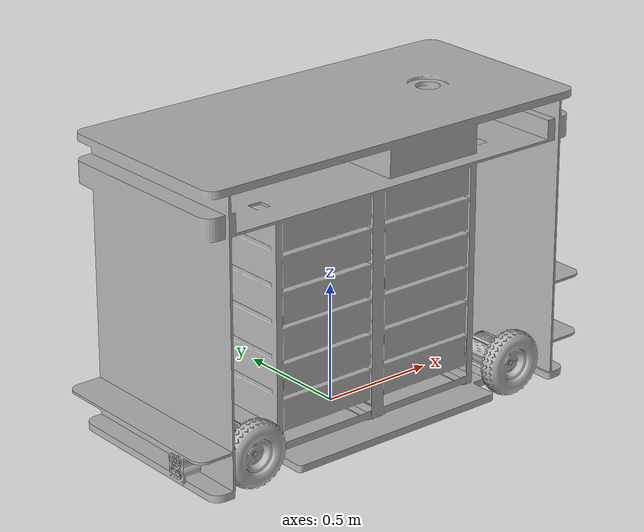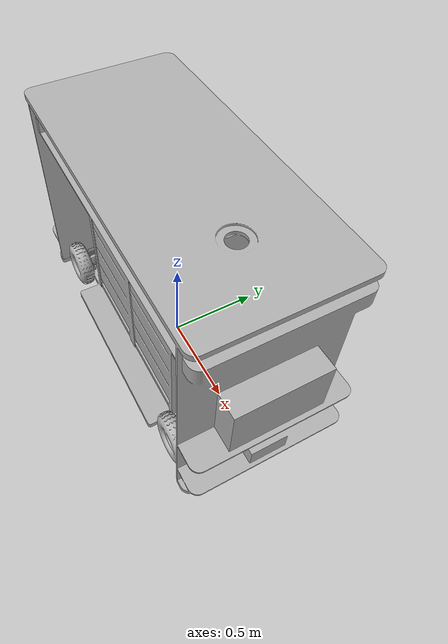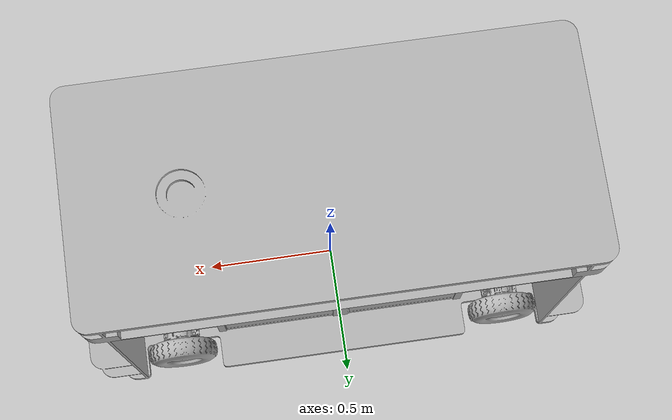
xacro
<?xml version="1.0" ?>
<robot name="than_xe_backup" xmlns:xacro="http://www.ros.org/wiki/xacro">

<xacro:include filename="$(find than_xe_backup_description)/urdf/materials.xacro" />
<xacro:include filename="$(find than_xe_backup_description)/urdf/than_xe_backup.trans" />
<xacro:include filename="$(find than_xe_backup_description)/urdf/than_xe_backup.gazebo" />
<link name="base_link">
  <inertial>
    <origin xyz="0.0370064191341632 -0.0012085384767595287 0.6336765540680926" rpy="0 0 0"/>
    <mass value="4808.877187166819"/>
    <inertia ixx="802.406036" iyy="1467.787259" izz="994.196717" ixy="4.876369" iyz="-2.186078" ixz="-5.572851"/>
  </inertial>
  <visual>
    <origin xyz="0 0 0" rpy="0 0 0"/>
    <geometry>
      <mesh filename="file://$(find than_xe_backup_description)/meshes/base_link.stl" scale="0.001 0.001 0.001"/>
    </geometry>
    <material name="silver"/>
  </visual>
  <collision>
    <origin xyz="0 0 0" rpy="0 0 0"/>
    <geometry>
      <mesh filename="file://$(find than_xe_backup_description)/meshes/base_link.stl" scale="0.001 0.001 0.001"/>
    </geometry>
  </collision>
</link>

<link name="wheel1_1">
  <inertial>
    <origin xyz="6.062106372439757e-11 0.00043646564249066877 -3.530163661391583e-11" rpy="0 0 0"/>
    <mass value="7.035084944105409"/>
    <inertia ixx="0.045298" iyy="0.079257" izz="0.045298" ixy="0.0" iyz="0.0" ixz="0.0"/>
  </inertial>
  <visual>
    <origin xyz="-0.65 -0.35225 -0.1015" rpy="0 0 0"/>
    <geometry>
      <mesh filename="file://$(find than_xe_backup_description)/meshes/wheel1_1.stl" scale="0.001 0.001 0.001"/>
    </geometry>
    <material name="silver"/>
  </visual>
  <collision>
    <origin xyz="-0.65 -0.35225 -0.1015" rpy="0 0 0"/>
    <geometry>
      <mesh filename="file://$(find than_xe_backup_description)/meshes/wheel1_1.stl" scale="0.001 0.001 0.001"/>
    </geometry>
  </collision>
</link>

<link name="wheel2_1">
  <inertial>
    <origin xyz="6.069045266343664e-11 -0.0004364656424908908 3.517806879127505e-11" rpy="0 0 0"/>
    <mass value="7.035084944105409"/>
    <inertia ixx="0.045298" iyy="0.079257" izz="0.045298" ixy="-0.0" iyz="0.0" ixz="-0.0"/>
  </inertial>
  <visual>
    <origin xyz="-0.64925 0.35225 -0.0982" rpy="0 0 0"/>
    <geometry>
      <mesh filename="file://$(find than_xe_backup_description)/meshes/wheel2_1.stl" scale="0.001 0.001 0.001"/>
    </geometry>
    <material name="silver"/>
  </visual>
  <collision>
    <origin xyz="-0.64925 0.35225 -0.0982" rpy="0 0 0"/>
    <geometry>
      <mesh filename="file://$(find than_xe_backup_description)/meshes/wheel2_1.stl" scale="0.001 0.001 0.001"/>
    </geometry>
  </collision>
</link>

<link name="wheel4_1">
  <inertial>
    <origin xyz="-4.4986378688882667e-07 0.0004364656424904467 2.8897391064763855e-07" rpy="0 0 0"/>
    <mass value="7.035084944105409"/>
    <inertia ixx="0.045298" iyy="0.079257" izz="0.045298" ixy="-0.0" iyz="-0.0" ixz="0.0"/>
  </inertial>
  <visual>
    <origin xyz="0.653595 -0.35225 -0.098109" rpy="0 0 0"/>
    <geometry>
      <mesh filename="file://$(find than_xe_backup_description)/meshes/wheel4_1.stl" scale="0.001 0.001 0.001"/>
    </geometry>
    <material name="silver"/>
  </visual>
  <collision>
    <origin xyz="0.653595 -0.35225 -0.098109" rpy="0 0 0"/>
    <geometry>
      <mesh filename="file://$(find than_xe_backup_description)/meshes/wheel4_1.stl" scale="0.001 0.001 0.001"/>
    </geometry>
  </collision>
</link>

<link name="wheel3_1">
  <inertial>
    <origin xyz="4.4810785126969677e-07 -0.00043646564249105735 6.14744366522757e-13" rpy="0 0 0"/>
    <mass value="7.035084944105409"/>
    <inertia ixx="0.045298" iyy="0.079257" izz="0.045298" ixy="0.0" iyz="-0.0" ixz="-0.0"/>
  </inertial>
  <visual>
    <origin xyz="0.652962 0.341 -0.102" rpy="0 0 0"/>
    <geometry>
      <mesh filename="file://$(find than_xe_backup_description)/meshes/wheel3_1.stl" scale="0.001 0.001 0.001"/>
    </geometry>
    <material name="silver"/>
  </visual>
  <collision>
    <origin xyz="0.652962 0.341 -0.102" rpy="0 0 0"/>
    <geometry>
      <mesh filename="file://$(find than_xe_backup_description)/meshes/wheel3_1.stl" scale="0.001 0.001 0.001"/>
    </geometry>
  </collision>
</link>

<link name="motor1_1">
  <inertial>
    <origin xyz="-0.65 -0.295 -0.03" rpy="0 0 0"/>
    <mass value="0.0"/>
    <inertia ixx="0.0" iyy="0.0" izz="0.0" ixy="0.0" iyz="0.0" ixz="0.0"/>
  </inertial>
  <visual>
    <origin xyz="-0.65 -0.295 -0.03" rpy="0 0 0"/>
    <geometry>
      <mesh filename="file://$(find than_xe_backup_description)/meshes/motor1_1.stl" scale="0.001 0.001 0.001"/>
    </geometry>
    <material name="silver"/>
  </visual>
  <collision>
    <origin xyz="-0.65 -0.295 -0.03" rpy="0 0 0"/>
    <geometry>
      <mesh filename="file://$(find than_xe_backup_description)/meshes/motor1_1.stl" scale="0.001 0.001 0.001"/>
    </geometry>
  </collision>
</link>

<link name="motor2_1">
  <inertial>
    <origin xyz="-0.65 0.295 -0.03" rpy="0 0 0"/>
    <mass value="0.0"/>
    <inertia ixx="0.0" iyy="0.0" izz="0.0" ixy="0.0" iyz="0.0" ixz="0.0"/>
  </inertial>
  <visual>
    <origin xyz="-0.65 0.295 -0.03" rpy="0 0 0"/>
    <geometry>
      <mesh filename="file://$(find than_xe_backup_description)/meshes/motor2_1.stl" scale="0.001 0.001 0.001"/>
    </geometry>
    <material name="silver"/>
  </visual>
  <collision>
    <origin xyz="-0.65 0.295 -0.03" rpy="0 0 0"/>
    <geometry>
      <mesh filename="file://$(find than_xe_backup_description)/meshes/motor2_1.stl" scale="0.001 0.001 0.001"/>
    </geometry>
  </collision>
</link>

<link name="motor3_1">
  <inertial>
    <origin xyz="0.65 -0.295 -0.03" rpy="0 0 0"/>
    <mass value="0.0"/>
    <inertia ixx="0.0" iyy="0.0" izz="0.0" ixy="0.0" iyz="0.0" ixz="0.0"/>
  </inertial>
  <visual>
    <origin xyz="0.65 -0.295 -0.03" rpy="0 0 0"/>
    <geometry>
      <mesh filename="file://$(find than_xe_backup_description)/meshes/motor3_1.stl" scale="0.001 0.001 0.001"/>
    </geometry>
    <material name="silver"/>
  </visual>
  <collision>
    <origin xyz="0.65 -0.295 -0.03" rpy="0 0 0"/>
    <geometry>
      <mesh filename="file://$(find than_xe_backup_description)/meshes/motor3_1.stl" scale="0.001 0.001 0.001"/>
    </geometry>
  </collision>
</link>

<joint name="wheel1_to_motor1" type="continuous">
  <origin xyz="0.0 0.05725 0.0715" rpy="0 0 0"/>
  <parent link="motor1_1"/>
  <child link="wheel1_1"/>
  <axis xyz="0.0 1.0 -0.0"/>
</joint>

<joint name="wheel2_to_motor2" type="continuous">
  <origin xyz="-0.00075 -0.05725 0.0682" rpy="0 0 0"/>
  <parent link="motor2_1"/>
  <child link="wheel2_1"/>
  <axis xyz="0.0 -1.0 0.0"/>
</joint>

<joint name="wheel3_to_motor3" type="continuous">
  <origin xyz="-0.003595 0.05725 0.068109" rpy="0 0 0"/>
  <parent link="motor3_1"/>
  <child link="wheel4_1"/>
  <axis xyz="0.0 1.0 0.0"/>
</joint>

<joint name="wheel4_to_base_link" type="continuous">
  <origin xyz="-0.652962 -0.341 0.102" rpy="0 0 0"/>
  <parent link="base_link"/>
  <child link="wheel3_1"/>
  <axis xyz="-0.0 -1.0 0.0"/>
</joint>

<joint name="motor1_to_base_link" type="fixed">
  <origin xyz="0.65 0.295 0.03" rpy="0 0 0"/>
  <parent link="base_link"/>
  <child link="motor1_1"/>
</joint>

<joint name="motor2_to_base_link" type="fixed">
  <origin xyz="0.65 -0.295 0.03" rpy="0 0 0"/>
  <parent link="base_link"/>
  <child link="motor2_1"/>
</joint>

<joint name="motor3_to_base_link" type="fixed">
  <origin xyz="-0.65 0.295 0.03" rpy="0 0 0"/>
  <parent link="base_link"/>
  <child link="motor3_1"/>
</joint>

</robot>

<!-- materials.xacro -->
<robot name="than_xe_backup" xmlns:xacro="http://www.ros.org/wiki/xacro" >

<material name="silver">
  <color rgba="0.700 0.700 0.700 1.000"/>
</material>

</robot>

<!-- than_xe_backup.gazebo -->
<robot name="than_xe_backup" xmlns:xacro="http://www.ros.org/wiki/xacro" >

<xacro:property name="body_color" value="Gazebo/Silver" />

<gazebo>
  <plugin name="control" filename="libgazebo_ros_control.so"/>
</gazebo>
<gazebo reference="base_link">
  <material>${body_color}</material>
  <mu1>0.2</mu1>
  <mu2>0.2</mu2>
  <self_collide>true</self_collide>
  <gravity>true</gravity>
</gazebo>

<gazebo reference="wheel1_1">
  <material>${body_color}</material>
  <mu1>0.2</mu1>
  <mu2>0.2</mu2>
  <self_collide>true</self_collide>
</gazebo>

<gazebo reference="wheel2_1">
  <material>${body_color}</material>
  <mu1>0.2</mu1>
  <mu2>0.2</mu2>
  <self_collide>true</self_collide>
</gazebo>

<gazebo reference="wheel4_1">
  <material>${body_color}</material>
  <mu1>0.2</mu1>
  <mu2>0.2</mu2>
  <self_collide>true</self_collide>
</gazebo>

<gazebo reference="wheel3_1">
  <material>${body_color}</material>
  <mu1>0.2</mu1>
  <mu2>0.2</mu2>
  <self_collide>true</self_collide>
</gazebo>

<gazebo reference="motor1_1">
  <material>${body_color}</material>
  <mu1>0.2</mu1>
  <mu2>0.2</mu2>
  <self_collide>true</self_collide>
</gazebo>

<gazebo reference="motor2_1">
  <material>${body_color}</material>
  <mu1>0.2</mu1>
  <mu2>0.2</mu2>
  <self_collide>true</self_collide>
</gazebo>

<gazebo reference="motor3_1">
  <material>${body_color}</material>
  <mu1>0.2</mu1>
  <mu2>0.2</mu2>
  <self_collide>true</self_collide>
</gazebo>

</robot>
